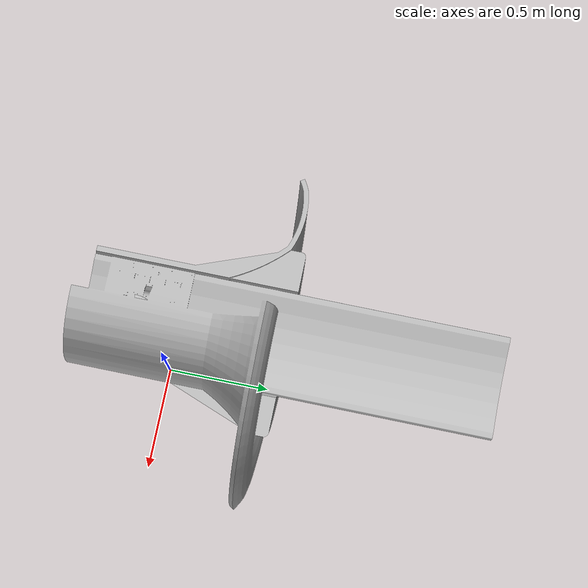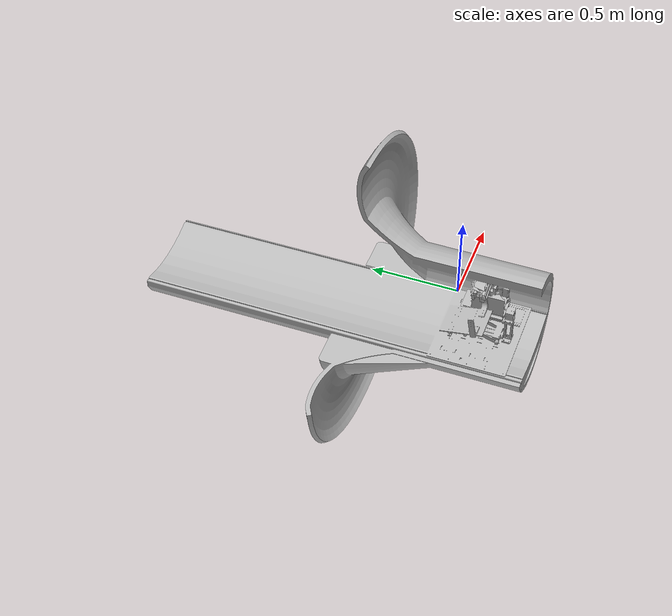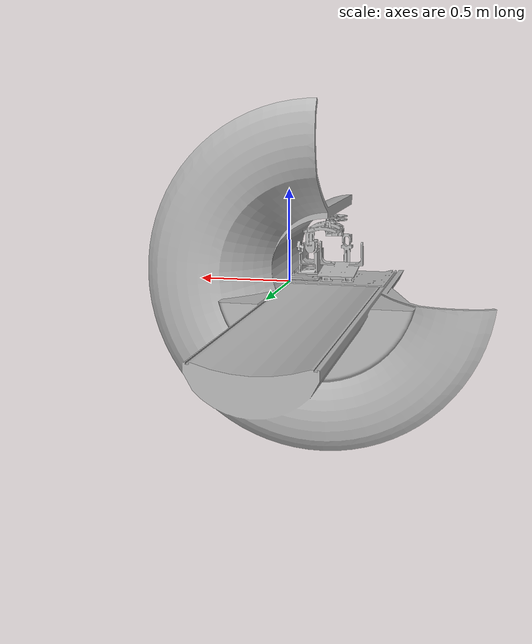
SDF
<?xml version="1.0" ?>
<sdf version='1.4'>
  <model name='surgical_robot_description'>
    <link name='base_link'>
      <pose>0 0 0 1.5707 -0 3.14</pose>
      <inertial>
        <pose>-0.021 0.01395 -0.04806 0 -0 0</pose>
        <mass>0.5</mass>
        <inertia>
          <ixx>0.001</ixx>
          <ixy>0</ixy>
          <ixz>0</ixz>
          <iyy>0.001</iyy>
          <iyz>0</iyz>
          <izz>0.001</izz>
        </inertia>
      </inertial>
      <collision name='base_link_collision'>
        <pose>0 0 0 0 -0 0</pose>
        <geometry>
          <mesh>
            <scale>1 1 1</scale>
            <uri>model://surgical_robot_description/meshes/MRI_2000.stl</uri>
          </mesh>
        </geometry>
      </collision>
      <collision name='base_link_collision_axial_translation'>
        <pose>-0.021 0.01395 -0.04806 0 -0 0</pose>
        <geometry>
          <mesh>
            <scale>1 1 1</scale>
            <uri>model://surgical_robot_description/meshes/axial_translation.stl</uri>
          </mesh>
        </geometry>
      </collision>
      <visual name='base_link_visual'>
        <pose>0 0 0 0 -0 0</pose>
        <geometry>
          <mesh>
            <scale>1 1 1</scale>
            <uri>model://surgical_robot_description/meshes/MRI.stl</uri>
          </mesh>
        </geometry>
      </visual>
      <visual name='base_link_visual_axial_translation'>
        <pose>-0.021 0.01395 -0.04806 0 -0 0</pose>
        <geometry>
          <mesh>
            <scale>1 1 1</scale>
            <uri>model://surgical_robot_description/meshes/axial_translation_200.stl</uri>
          </mesh>
        </geometry>
      </visual>
      <velocity_decay>
        <linear>0</linear>
        <angular>0</angular>
      </velocity_decay>
    </link>
    <joint name='world_link' type='revolute'>
      <child>base_link</child>
      <parent>world</parent>
      <axis>
        <limit>
          <lower>0</lower>
          <upper>0</upper>
        </limit>
        <dynamics>
          <damping>0</damping>
        </dynamics>
        <xyz>0 0 1</xyz>
      </axis>
    </joint>
    <link name='lateral_translation'>
      <pose>0.0148358 -0.103086 0.0238901 1.5707 -0 3.14</pose>
      <inertial>
        <pose>0 0 0 0 -0 0</pose>
        <mass>0.5</mass>
        <inertia>
          <ixx>0.001</ixx>
          <ixy>0</ixy>
          <ixz>0</ixz>
          <iyy>0.001</iyy>
          <iyz>0</iyz>
          <izz>0.001</izz>
        </inertia>
      </inertial>
      <collision name='lateral_translation_collision'>
        <pose>0 0 0 0 -0 0</pose>
        <geometry>
          <mesh>
            <scale>1 1 1</scale>
            <uri>model://surgical_robot_description/meshes/lateral_translation.stl</uri>
          </mesh>
        </geometry>
      </collision>
      <visual name='lateral_translation_visual'>
        <pose>0 0 0 0 -0 0</pose>
        <geometry>
          <mesh>
            <scale>1 1 1</scale>
            <uri>model://surgical_robot_description/meshes/lateral_translation_200.stl</uri>
          </mesh>
        </geometry>
      </visual>
      <velocity_decay>
        <linear>0</linear>
        <angular>0</angular>
      </velocity_decay>
    </link>
    <joint name='base_x' type='prismatic'>
      <child>lateral_translation</child>
      <parent>base_link</parent>
      <axis>
        <xyz>0.00159265 0.999999 9.63268e-05</xyz>
        <limit>
          <lower>0</lower>
          <upper>0.1</upper>
          <effort>0.001</effort>
          <velocity>0.2</velocity>
        </limit>
        <dynamics/>
      </axis>
    </joint>
    <link name='vertical_translation'>
      <pose>-0.0194727 -0.108433 0.0358396 1.5707 -0 3.14</pose>
      <inertial>
        <pose>0 0 0 0 -0 0</pose>
        <mass>0.5</mass>
        <inertia>
          <ixx>0.001</ixx>
          <ixy>0</ixy>
          <ixz>0</ixz>
          <iyy>0.001</iyy>
          <iyz>0</iyz>
          <izz>0.001</izz>
        </inertia>
      </inertial>
      <collision name='vertical_translation_collision'>
        <pose>0 0 0 0 -0 0</pose>
        <geometry>
          <mesh>
            <scale>1 1 1</scale>
            <uri>model://surgical_robot_description/meshes/vertical_translation.stl</uri>
          </mesh>
        </geometry>
      </collision>
      <visual name='vertical_translation_visual'>
        <pose>0 0 0 0 -0 0</pose>
        <geometry>
          <mesh>
            <scale>1 1 1</scale>
            <uri>model://surgical_robot_description/meshes/vertical_translation_200.stl</uri>
          </mesh>
        </geometry>
      </visual>
      <velocity_decay>
        <linear>0</linear>
        <angular>0</angular>
      </velocity_decay>
    </link>
    <joint name='base_y' type='prismatic'>
      <child>vertical_translation</child>
      <parent>lateral_translation</parent>
      <axis>
        <xyz>-0.999999 0.00159265 0</xyz>
        <limit>
          <lower>0</lower>
          <upper>0.1</upper>
          <effort>0.001</effort>
          <velocity>0.2</velocity>
        </limit>
        <dynamics/>
      </axis>
    </joint>
    <link name='base'>
      <pose>-0.0304616 -0.101419 0.0796502 1.5707 -0 3.14</pose>
      <inertial>
        <pose>0 0 0 0 -0 0</pose>
        <mass>0.5</mass>
        <inertia>
          <ixx>0.001</ixx>
          <ixy>0</ixy>
          <ixz>0</ixz>
          <iyy>0.001</iyy>
          <iyz>0</iyz>
          <izz>0.001</izz>
        </inertia>
      </inertial>
      <collision name='base_collision'>
        <pose>0 0 0 0 -0 0</pose>
        <geometry>
          <mesh>
            <scale>1 1 1</scale>
            <uri>model://surgical_robot_description/meshes/base.stl</uri>
          </mesh>
        </geometry>
      </collision>
      <visual name='base_visual'>
        <pose>0 0 0 0 -0 0</pose>
        <geometry>
          <mesh>
            <scale>1 1 1</scale>
            <uri>model://surgical_robot_description/meshes/base_200.stl</uri>
          </mesh>
        </geometry>
      </visual>
      <velocity_decay>
        <linear>0</linear>
        <angular>0</angular>
      </velocity_decay>
    </link>
    <joint name='base_z' type='prismatic'>
      <child>base</child>
      <parent>vertical_translation</parent>
      <axis>
        <xyz>-1.53415e-07 -9.63267e-05 1</xyz>
        <limit>
          <lower>0</lower>
          <upper>0.1</upper>
          <effort>0.001</effort>
          <velocity>0.2</velocity>
        </limit>
        <dynamics/>
      </axis>
    </joint>
    <link name='base_yaw'>
      <pose>-0.108298 -0.187305 0.181662 1.5707 -0 3.14</pose>
      <inertial>
        <pose>0 0 0 0 -0 0</pose>
        <mass>0.5</mass>
        <inertia>
          <ixx>0.001</ixx>
          <ixy>0</ixy>
          <ixz>0</ixz>
          <iyy>0.001</iyy>
          <iyz>0</iyz>
          <izz>0.001</izz>
        </inertia>
      </inertial>
      <collision name='base_yaw_collision'>
        <pose>0 0 0 0 -0 0</pose>
        <geometry>
          <mesh>
            <scale>1 1 1</scale>
            <uri>model://surgical_robot_description/meshes/base_yaw.stl</uri>
          </mesh>
        </geometry>
      </collision>
      <visual name='base_yaw_visual'>
        <pose>0 0 0 0 -0 0</pose>
        <geometry>
          <mesh>
            <scale>1 1 1</scale>
            <uri>model://surgical_robot_description/meshes/base_yaw_200.stl</uri>
          </mesh>
        </geometry>
      </visual>
      <velocity_decay>
        <linear>0</linear>
        <angular>0</angular>
      </velocity_decay>
    </link>
    <joint name='base_yaw' type='revolute'>
      <child>base_yaw</child>
      <parent>base</parent>
      <axis>
        <xyz>-0.999999 0.00159265 0</xyz>
        <limit>
          <lower>-0.5</lower>
          <upper>0.5</upper>
          <effort>1000</effort>
          <velocity>0.5</velocity>
        </limit>
        <dynamics/>
      </axis>
    </joint>
    <link name='vertical_long'>
      <pose>-0.0869794 -0.150239 0.179646 1.5707 -0 3.14</pose>
      <inertial>
        <pose>0 0 0 0 -0 0</pose>
        <mass>0.5</mass>
        <inertia>
          <ixx>0.001</ixx>
          <ixy>0</ixy>
          <ixz>0</ixz>
          <iyy>0.001</iyy>
          <iyz>0</iyz>
          <izz>0.001</izz>
        </inertia>
      </inertial>
      <collision name='vertical_long_collision'>
        <pose>0 0 0 0 -0 0</pose>
        <geometry>
          <mesh>
            <scale>1 1 1</scale>
            <uri>model://surgical_robot_description/meshes/vertical_long.stl</uri>
          </mesh>
        </geometry>
      </collision>
      <visual name='vertical_long_visual'>
        <pose>0 0 0 0 -0 0</pose>
        <geometry>
          <mesh>
            <scale>1 1 1</scale>
            <uri>model://surgical_robot_description/meshes/vertical_long_200.stl</uri>
          </mesh>
        </geometry>
      </visual>
      <velocity_decay>
        <linear>0</linear>
        <angular>0</angular>
      </velocity_decay>
    </link>
    <joint name='base_vertical_long' type='revolute'>
      <child>vertical_long</child>
      <parent>base_yaw</parent>
      <axis>
        <xyz>0.00159265 0.999999 9.63268e-05</xyz>
        <limit>
          <lower>-0.5</lower>
          <upper>0.5</upper>
          <effort>1000</effort>
          <velocity>0.5</velocity>
        </limit>
        <dynamics/>
      </axis>
    </joint>
    <link name='horizontal_short'>
      <pose>-0.0869659 -0.141748 0.278146 1.5707 -0 3.14</pose>
      <inertial>
        <pose>0 0 0 0 -0 0</pose>
        <mass>0.5</mass>
        <inertia>
          <ixx>0.001</ixx>
          <ixy>0</ixy>
          <ixz>0</ixz>
          <iyy>0.001</iyy>
          <iyz>0</iyz>
          <izz>0.001</izz>
        </inertia>
      </inertial>
      <collision name='horizontal_short_collision'>
        <pose>0 0 0 0 -0 0</pose>
        <geometry>
          <mesh>
            <scale>1 1 1</scale>
            <uri>model://surgical_robot_description/meshes/horizontal_short.stl</uri>
          </mesh>
        </geometry>
      </collision>
      <visual name='horizontal_short_visual'>
        <pose>0 0 0 0 -0 0</pose>
        <geometry>
          <mesh>
            <scale>1 1 1</scale>
            <uri>model://surgical_robot_description/meshes/horizontal_short_200.stl</uri>
          </mesh>
        </geometry>
      </visual>
      <velocity_decay>
        <linear>0</linear>
        <angular>0</angular>
      </velocity_decay>
    </link>
    <joint name='horizontal_s_vertical_l' type='revolute'>
      <child>horizontal_short</child>
      <parent>vertical_long</parent>
      <axis>
        <xyz>0.00159265 0.999999 9.63268e-05</xyz>
        <limit>
          <lower>-0.5</lower>
          <upper>0.5</upper>
          <effort>1000</effort>
          <velocity>0.5</velocity>
        </limit>
        <dynamics/>
      </axis>
    </joint>
    <link name='needle_driver'>
      <pose>-0.246977 -0.148684 0.278146 1.5707 -0 3.14</pose>
      <inertial>
        <pose>0 0 0 0 -0 0</pose>
        <mass>0.5</mass>
        <inertia>
          <ixx>0.001</ixx>
          <ixy>0</ixy>
          <ixz>0</ixz>
          <iyy>0.001</iyy>
          <iyz>0</iyz>
          <izz>0.001</izz>
        </inertia>
      </inertial>
      <visual name='needle_driver_visual'>
        <pose>0 0 0 0 -0 0</pose>
        <geometry>
          <mesh>
            <scale>1 1 1</scale>
            <uri>model://surgical_robot_description/meshes/needle_driver_200.stl</uri>
          </mesh>
        </geometry>
      </visual>
      <velocity_decay>
        <linear>0</linear>
        <angular>0</angular>
      </velocity_decay>
    </link>
    <joint name='horizontal_s_needle_d' type='prismatic'>
      <child>needle_driver</child>
      <parent>horizontal_short</parent>
      <axis>
        <xyz>-1.53415e-07 -9.63267e-05 1</xyz>
        <limit>
          <lower>0</lower>
          <upper>0.1</upper>
          <effort>0.001</effort>
          <velocity>0.2</velocity>
        </limit>
        <dynamics/>
      </axis>
    </joint>
    <link name='horizontal_long'>
      <pose>-0.0869533 -0.133857 0.259647 1.5707 -0 3.14</pose>
      <inertial>
        <pose>0 0 0 0 -0 0</pose>
        <mass>0.5</mass>
        <inertia>
          <ixx>0.001</ixx>
          <ixy>0</ixy>
          <ixz>0</ixz>
          <iyy>0.001</iyy>
          <iyz>0</iyz>
          <izz>0.001</izz>
        </inertia>
      </inertial>
      <collision name='horizontal_long_collision'>
        <pose>0 0 0 0 -0 0</pose>
        <geometry>
          <mesh>
            <scale>1 1 1</scale>
            <uri>model://surgical_robot_description/meshes/horizontal_long.stl</uri>
          </mesh>
        </geometry>
      </collision>
      <visual name='horizontal_long_visual'>
        <pose>0 0 0 0 -0 0</pose>
        <geometry>
          <mesh>
            <scale>1 1 1</scale>
            <uri>model://surgical_robot_description/meshes/horizontal_long_200.stl</uri>
          </mesh>
        </geometry>
      </visual>
      <velocity_decay>
        <linear>0</linear>
        <angular>0</angular>
      </velocity_decay>
    </link>
    <joint name='horizontal_vertical_long' type='revolute'>
      <child>horizontal_long</child>
      <parent>vertical_long</parent>
      <axis>
        <xyz>0.00159265 0.999999 9.63268e-05</xyz>
        <limit>
          <lower>-0.5</lower>
          <upper>0.5</upper>
          <effort>1000</effort>
          <velocity>0.5</velocity>
        </limit>
        <dynamics/>
      </axis>
    </joint>
    <link name='needle_driver'>
      <pose>-0.246965 -0.140792 0.259646 1.5707 -0 3.14</pose>
      <inertial>
        <pose>0 0 0 0 -0 0</pose>
        <mass>0.5</mass>
        <inertia>
          <ixx>0.001</ixx>
          <ixy>0</ixy>
          <ixz>0</ixz>
          <iyy>0.001</iyy>
          <iyz>0</iyz>
          <izz>0.001</izz>
        </inertia>
      </inertial>
      <visual name='needle_driver_visual'>
        <pose>0 0 0 0 -0 0</pose>
        <geometry>
          <mesh>
            <scale>1 1 1</scale>
            <uri>model://surgical_robot_description/meshes/needle_driver_200.stl</uri>
          </mesh>
        </geometry>
      </visual>
      <velocity_decay>
        <linear>0</linear>
        <angular>0</angular>
      </velocity_decay>
    </link>
    <joint name='horizontal_s_needle_d2' type='prismatic'>
      <child>needle_driver</child>
      <parent>horizontal_short</parent>
      <axis>
        <xyz>-1.53415e-07 -9.63267e-05 1</xyz>
        <limit>
          <lower>0</lower>
          <upper>0.1</upper>
          <effort>0.001</effort>
          <velocity>0.2</velocity>
        </limit>
        <dynamics/>
      </axis>
    </joint>
    <link name='vertical_short'>
      <pose>-0.0684667 -0.142268 0.179646 1.5707 -0 3.14</pose>
      <inertial>
        <pose>0 0 0 0 -0 0</pose>
        <mass>0.5</mass>
        <inertia>
          <ixx>0.001</ixx>
          <ixy>0</ixy>
          <ixz>0</ixz>
          <iyy>0.001</iyy>
          <iyz>0</iyz>
          <izz>0.001</izz>
        </inertia>
      </inertial>
      <collision name='vertical_short_collision'>
        <pose>0 0 0 0 -0 0</pose>
        <geometry>
          <mesh>
            <scale>1 1 1</scale>
            <uri>model://surgical_robot_description/meshes/vertical_short.stl</uri>
          </mesh>
        </geometry>
      </collision>
      <visual name='vertical_short_visual'>
        <pose>0 0 0 0 -0 0</pose>
        <geometry>
          <mesh>
            <scale>1 1 1</scale>
            <uri>model://surgical_robot_description/meshes/vertical_short_200.stl</uri>
          </mesh>
        </geometry>
      </visual>
      <velocity_decay>
        <linear>0</linear>
        <angular>0</angular>
      </velocity_decay>
    </link>
    <joint name='base_vertical_short' type='revolute'>
      <child>vertical_short</child>
      <parent>base_yaw</parent>
      <axis>
        <xyz>0.00159265 0.999999 9.63268e-05</xyz>
        <limit>
          <lower>-0.5</lower>
          <upper>0.5</upper>
          <effort>1000</effort>
          <velocity>0.5</velocity>
        </limit>
        <dynamics/>
      </axis>
    </joint>
    <link name='horizontal_long'>
      <pose>-0.0684406 -0.125886 0.259648 1.5707 -0 3.14</pose>
      <inertial>
        <pose>0 0 0 0 -0 0</pose>
        <mass>0.5</mass>
        <inertia>
          <ixx>0.001</ixx>
          <ixy>0</ixy>
          <ixz>0</ixz>
          <iyy>0.001</iyy>
          <iyz>0</iyz>
          <izz>0.001</izz>
        </inertia>
      </inertial>
      <collision name='horizontal_long_collision'>
        <pose>0 0 0 0 -0 0</pose>
        <geometry>
          <mesh>
            <scale>1 1 1</scale>
            <uri>model://surgical_robot_description/meshes/horizontal_long.stl</uri>
          </mesh>
        </geometry>
      </collision>
      <visual name='horizontal_long_visual'>
        <pose>0 0 0 0 -0 0</pose>
        <geometry>
          <mesh>
            <scale>1 1 1</scale>
            <uri>model://surgical_robot_description/meshes/horizontal_long_200.stl</uri>
          </mesh>
        </geometry>
      </visual>
      <velocity_decay>
        <linear>0</linear>
        <angular>0</angular>
      </velocity_decay>
    </link>
    <joint name='horizontal_vertical_long2' type='revolute'>
      <child>horizontal_long</child>
      <parent>vertical_long</parent>
      <axis>
        <xyz>0.00159265 0.999999 9.63268e-05</xyz>
        <limit>
          <lower>-0.5</lower>
          <upper>0.5</upper>
          <effort>1000</effort>
          <velocity>0.5</velocity>
        </limit>
        <dynamics/>
      </axis>
    </joint>
    <link name='needle_driver'>
      <pose>-0.228452 -0.132821 0.259647 1.5707 -0 3.14</pose>
      <inertial>
        <pose>0 0 0 0 -0 0</pose>
        <mass>0.5</mass>
        <inertia>
          <ixx>0.001</ixx>
          <ixy>0</ixy>
          <ixz>0</ixz>
          <iyy>0.001</iyy>
          <iyz>0</iyz>
          <izz>0.001</izz>
        </inertia>
      </inertial>
      <visual name='needle_driver_visual'>
        <pose>0 0 0 0 -0 0</pose>
        <geometry>
          <mesh>
            <scale>1 1 1</scale>
            <uri>model://surgical_robot_description/meshes/needle_driver_200.stl</uri>
          </mesh>
        </geometry>
      </visual>
      <velocity_decay>
        <linear>0</linear>
        <angular>0</angular>
      </velocity_decay>
    </link>
    <joint name='horizontal_s_needle_d3' type='prismatic'>
      <child>needle_driver</child>
      <parent>horizontal_short</parent>
      <axis>
        <xyz>-1.53415e-07 -9.63267e-05 1</xyz>
        <limit>
          <lower>0</lower>
          <upper>0.1</upper>
          <effort>0.001</effort>
          <velocity>0.2</velocity>
        </limit>
        <dynamics/>
      </axis>
    </joint>
    <static>0</static>
    <plugin name='gazebo_ros_control' filename='libgazebo_ros_control.so'>
      <robotNamespace>/surgical_robot_description</robotNamespace>
    </plugin>
  </model>
</sdf>
